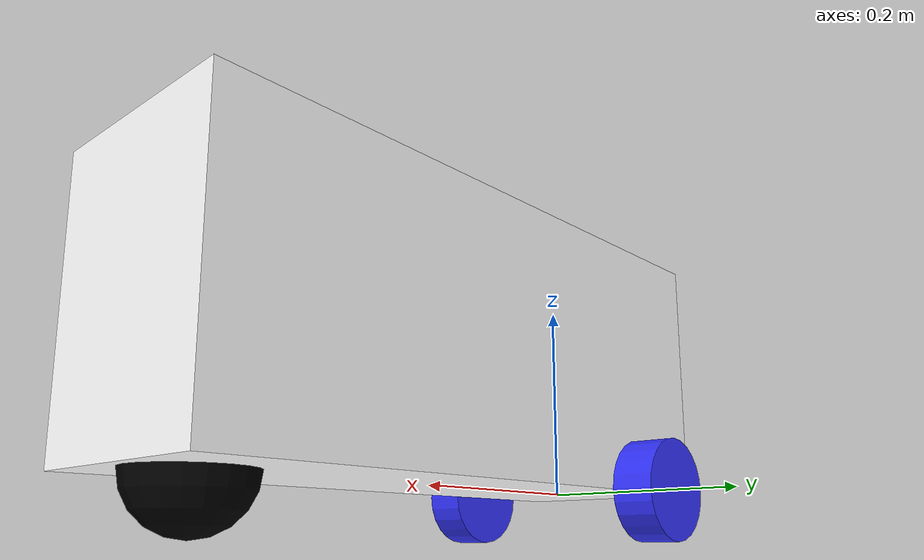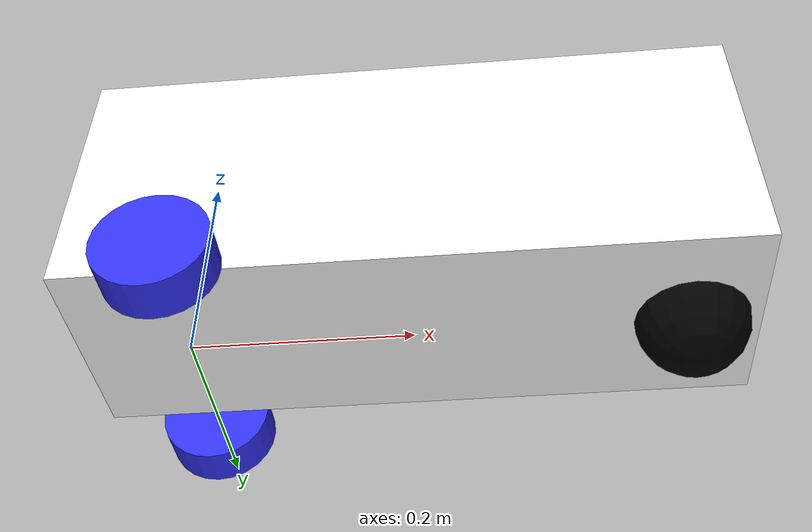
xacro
<?xml version="1.0"?>
<robot xmlns:xacro="http://www.ros.org/wiki/xacro">

  <xacro:include filename="inertial_macros.xacro"/>
  <material name="white">
    <color rgba="1 1 1 1"/>
  </material>

  <material name="orange">
    <color rgba="1 0.3 0.1 1"/>
  </material>

  <material name="blue">
    <color rgba="0.2 0.2 1 1"/>
  </material>

  <material name="black">
    <color rgba="0 0 0 1"/>
  </material>

<!--Base link-->
  <link name="base_link"></link>

<!--chassis link-->
  <joint name="chassis_joint" type="fixed">
    <parent link="base_link"/>
    <child link="chassis"/>
    <origin xyz="-0.1 0 0"/>
  </joint>

  <link name="chassis">
    <visual>
      <origin xyz="0.3 0 0.125"/>
      <geometry>
        <box size="0.6 0.2 0.25"/>
      </geometry>
      <material name="white"/>
    </visual>
    <collision>
      <origin xyz="0.3 0 0.125"/>
      <geometry>
        <box size="0.6 0.2 0.25"/>
      </geometry>
    </collision>
    <xacro:inertial_box mass="0.5" x="0.6" y="0.2" z="0.25">
      <origin xyz="0.3 0 0.125" rpy="0 0 0"/>
    </xacro:inertial_box>
  </link>

<!--left wheel-->
<joint name="left_wheel_joint" type="continuous">
  <parent link="base_link"/>
  <child link="left_wheel"/>
  <origin xyz="0 0.12 0" rpy="-${pi/2} 0 0"/>
  <axis xyz="0 0 1"/>
</joint>

<link name="left_wheel">
  <visual>
    <geometry>
      <cylinder radius="0.05" length="0.04"/>
    </geometry>
    <material name="blue"/>
  </visual>
  <collision>
    <geometry>
      <cylinder radius="0.05" length="0.04"/>
    </geometry>
  </collision>
  <xacro:inertial_cylinder mass="0.1" length="0.04" radius="0.05">
    <origin xyz="0 0 0" rpy="0 0 0"/>
  </xacro:inertial_cylinder>
</link>

<!--right wheel-->
<joint name="right_wheel_joint" type="continuous">
  <parent link="base_link"/>
  <child link="right_wheel"/>
  <origin xyz="0 -0.12 0" rpy="${pi/2} 0 0"/>
  <axis xyz="0 0 -1"/>
</joint>

<link name="right_wheel">
  <visual>
    <geometry>
      <cylinder radius="0.05" length="0.04"/>
    </geometry>
    <material name="blue"/>
  </visual>
  <collision>
    <geometry>
      <cylinder radius="0.05" length="0.04"/>
    </geometry>
  </collision>
  <xacro:inertial_cylinder mass="0.1" length="0.04" radius="0.05">
    <origin xyz="0 0 0" rpy="0 0 0"/>
  </xacro:inertial_cylinder>
</link>

<joint name="castor_wheel_joint" type="fixed">
  <parent link="chassis"/>
  <child link="caster_wheel"/>
  <origin xyz="0.54 0 0"/>
</joint>

<link name="caster_wheel">
  <visual>
    <geometry>
      <sphere radius="0.05"/>
    </geometry>
    <material name="black"/>
  </visual>
    <collision>
    <geometry>
      <sphere radius="0.05"/>
    </geometry>
  </collision>
  <xacro:inertial_sphere mass="0.1" radius="0.05">
    <origin xyz="0 0 0" rpy="0 0 0"/>
  </xacro:inertial_sphere>
</link>
</robot>

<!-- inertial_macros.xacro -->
<robot xmlns:xacro="http://www.ros.org/wiki/xacro">

  <xacro:macro name="inertial_sphere" params="mass radius *origin">
    <inertial>
      <xacro:insert_block name="origin"/>
      <mass value="${mass}"/>
      <inertia ixx="${(2/5) * mass * (radius*radius)}" ixy="0.0" ixz="0.0"
              iyy="${(2/5) * mass * (radius*radius)}" iyz="0.0"
              izz="${(2/5) * mass * (radius*radius)}" />
    </inertial>
  </xacro:macro>

  <xacro:macro name="inertial_box" params="mass x y z *origin">
    <inertial>
      <xacro:insert_block name="origin"/>
      <mass value="${mass}"/>
      <inertia ixx="${(1/12) * mass * (y*y + z*z)}" ixy="0.0" ixz="0.0"
              iyy="${(1/12) * mass * (x*x + z*z)}" iyz="0.0"
              izz="${(1/12) * mass * (x*x + y*y)}" />
    </inertial>
  </xacro:macro>

    <xacro:macro name="inertial_cylinder" params="mass length radius *origin">
    <inertial>
      <xacro:insert_block name="origin"/>
      <mass value="${mass}"/>
      <inertia ixx="${(1/12) * mass * (3*radius*radius + length*length)}" ixy="0.0" ixz="0.0"
              iyy="${(1/12) * mass * (3*radius*radius + length*length)}" iyz="0.0"
              izz="${(1/2) * mass * (radius*radius)}" />
    </inertial>
  </xacro:macro>

</robot>
